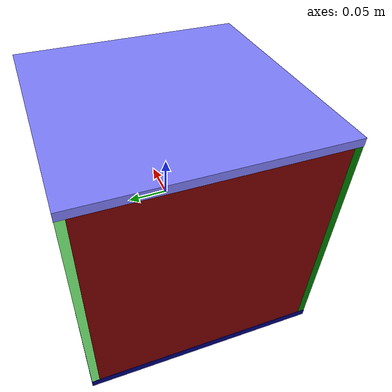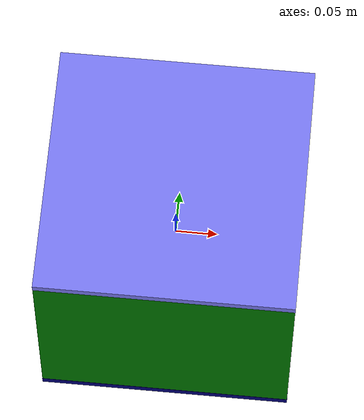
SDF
<?xml version="1.0"?>
<sdf version="1.7">

<model name="movable_cuboid">
  <link name="cuboid_body">
    <inertial>
      <mass>1.0</mass>
      <pose>0 0 0 0 0 0</pose>
      <inertia>
        <ixx>0.000833</ixx>
        <ixy>0</ixy>
        <ixz>0</ixz>
        <iyy>0.000833</iyy>
        <iyz>0</iyz>
        <izz>0.000833</izz>
      </inertia>
    </inertial>

    <!-- X+ face (light red) -->
    <visual name="cuboid_visual_x_pos">
      <pose>0.145 0 0 0 1.5708 0</pose>
      <geometry>
        <box>
          <size>0.299 0.299 0.009</size>
        </box>
      </geometry>
      <material>
        <ambient>1 0.5 0.5 1</ambient>
        <diffuse>1 0.5 0.5 1</diffuse>
      </material>
    </visual>

    <!-- X- face (dark red) -->
    <visual name="cuboid_visual_x_neg">
      <pose>-0.145 0 0 0 -1.5708 0</pose>
      <geometry>
        <box>
          <size>0.299 0.299 0.009</size>
        </box>
      </geometry>
      <material>
        <ambient>0.5 0 0 1</ambient>
        <diffuse>0.5 0 0 1</diffuse>
      </material>
    </visual>

    <!-- Y+ face (light green) -->
    <visual name="cuboid_visual_y_pos">
      <pose>0 0.145 0 -1.5708 0 0</pose>
      <geometry>
        <box>
          <size>0.2995 0.2995 0.0095</size>
        </box>
      </geometry>
      <material>
        <ambient>0.5 1 0.5 1</ambient>
        <diffuse>0.5 1 0.5 1</diffuse>
      </material>
    </visual>

    <!-- Y- face (dark green) -->
    <visual name="cuboid_visual_y_neg">
      <pose>0 -0.145 0 1.5708 0 0</pose>
      <geometry>
        <box>
          <size>0.2995 0.2995 0.0095</size>
        </box>
      </geometry>
      <material>
        <ambient>0 0.5 0 1</ambient>
        <diffuse>0 0.5 0 1</diffuse>
      </material>
    </visual>

    <!-- Z+ face (light blue) -->
    <visual name="cuboid_visual_z_pos">
      <pose>0 0 0.145 0 0 3.14159</pose>
      <geometry>
        <box>
          <size>0.3 0.3 0.01</size>
        </box>
      </geometry>
      <material>
        <ambient>0.5 0.5 1 1</ambient>
        <diffuse>0.5 0.5 1 1</diffuse>
      </material>
    </visual>

    <!-- Z- face (dark blue) -->
    <visual name="cuboid_visual_z_neg">
      <pose>0 0 -0.145 0 0 0</pose>
      <geometry>
        <box>
          <size>0.3 0.3 0.01</size>
        </box>
      </geometry>
      <material>
        <ambient>0 0 0.5 1</ambient>
        <diffuse>0 0 0.5 1</diffuse>
      </material>
    </visual>

    <collision name="cuboid_collision">
      <pose>0 0 0 0 0 0</pose>
      <geometry>
        <box>
          <size>0.28 0.28 0.28</size>
        </box>
      </geometry>
      <drake:proximity_properties>
        <drake:compliant_hydroelastic/>
        <drake:hydroelastic_modulus>1.0e7</drake:hydroelastic_modulus>
        <drake:mu_dynamic>0.5</drake:mu_dynamic>
        <drake:hunt_crossley_dissipation>1.25</drake:hunt_crossley_dissipation>
      </drake:proximity_properties>
    </collision>
  </link>
  <frame name="X_pos_contact">
    <pose>0.15 0 0 0 -1.5708 0</pose> <!-- Y-axis rotation of -90 degrees -->
  </frame>
  <frame name="X_neg_contact">
    <pose>-0.15 0 0 0 1.5708 0</pose> <!-- Y-axis rotation of +90 degrees -->
  </frame>
  <frame name="Y_pos_contact">
    <pose>0 0.15 0 1.5708 0 0</pose> <!-- X-axis rotation of +90 degrees -->
  </frame>
  <frame name="Y_neg_contact">
    <pose>0 -0.15 0 -1.5708 0 0</pose> <!-- X-axis rotation of -90 degrees -->
  </frame>
  <frame name="Z_pos_contact">
    <pose>0 0 0.15 3.14159 0 0</pose> <!-- No rotation needed -->
  </frame>
  <frame name="Z_neg_contact">
    <pose>0 0 -0.15 0 0 0</pose> <!-- X-axis rotation of 180 degrees -->
  </frame>
</model>

</sdf>
